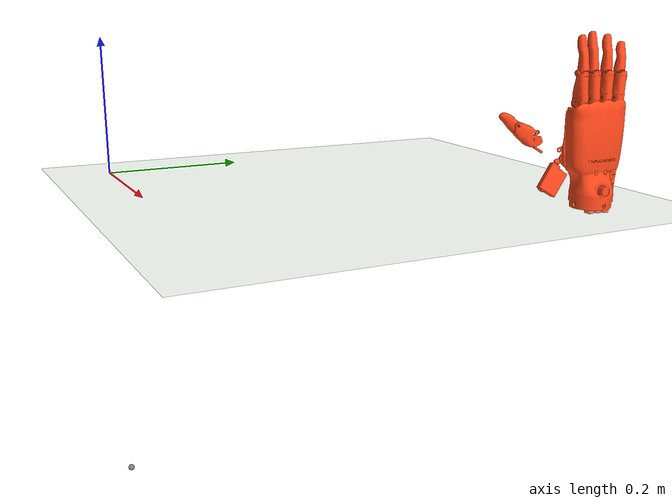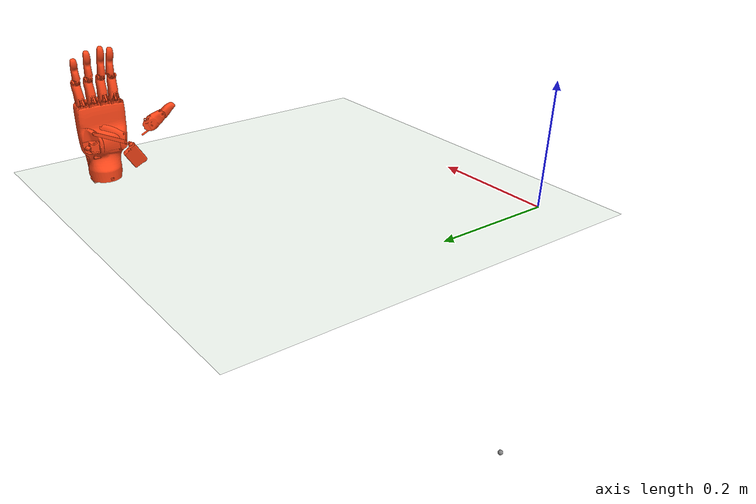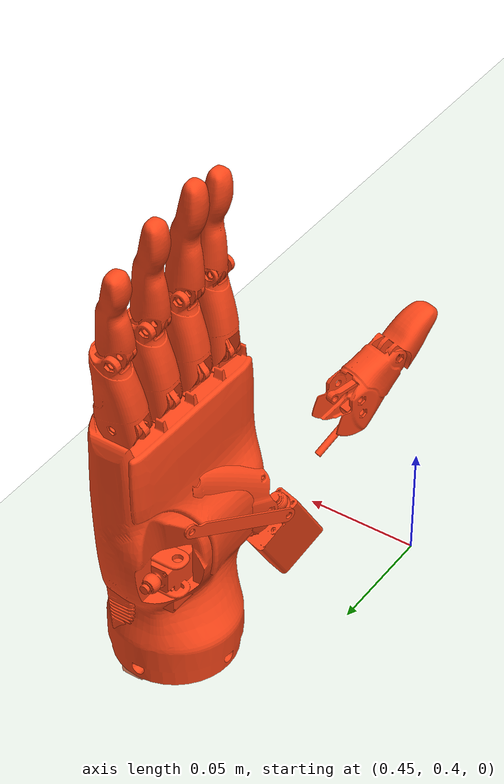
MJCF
<mujoco model="handright9253">
  <default>
    <default class="robot">
      <default class="motor">
        <joint />
        <motor />
      </default>
      <default class="visual">
        <geom material="visualgeom" contype="0" conaffinity="0" group="2" />
      </default>
      <default class="collision">
        <geom material="collision_material" condim="3" contype="0" conaffinity="1" priority="1" group="1" solref="0.005 1" solimp="0.99 0.999 1e-05" friction="1 0.01 0.01" />
      </default>
    </default>
  </default>

  <compiler angle="radian" />

  <asset>
    <material name="material_a" rgba="1 1 1 1" />
    <material name="default_material" rgba="0.7 0.7 0.7 1" />
    <material name="collision_material" rgba="1.0 0.28 0.1 0.9" />
    <mesh name="base_link.STL" file="../meshes/base_link.STL" />
    <mesh name="Link1.STL" file="../meshes/Link1.STL" />
    <mesh name="Link2.STL" file="../meshes/Link2.STL" />
    <mesh name="Link3.STL" file="../meshes/Link3.STL" />
    <mesh name="Link4.STL" file="../meshes/Link4.STL" />
    <mesh name="Link5.STL" file="../meshes/Link5.STL" />
    <mesh name="Link11.STL" file="../meshes/Link11.STL" />
    <mesh name="Link12.STL" file="../meshes/Link12.STL" />
    <mesh name="Link13.STL" file="../meshes/Link13.STL" />
    <mesh name="Link14.STL" file="../meshes/Link14.STL" />
    <mesh name="Link15.STL" file="../meshes/Link15.STL" />
    <mesh name="Link21.STL" file="../meshes/Link21.STL" />
    <mesh name="Link22.STL" file="../meshes/Link22.STL" />
    <mesh name="Link23.STL" file="../meshes/Link23.STL" />
    <mesh name="Link24.STL" file="../meshes/Link24.STL" />
    <mesh name="Link25.STL" file="../meshes/Link25.STL" />
    <mesh name="Link31.STL" file="../meshes/Link31.STL" />
    <mesh name="Link32.STL" file="../meshes/Link32.STL" />
    <mesh name="Link33.STL" file="../meshes/Link33.STL" />
    <mesh name="Link34.STL" file="../meshes/Link34.STL" />
    <mesh name="Link35.STL" file="../meshes/Link35.STL" />
    <mesh name="Link41.STL" file="../meshes/Link41.STL" />
    <mesh name="Link42.STL" file="../meshes/Link42.STL" />
    <mesh name="Link43.STL" file="../meshes/Link43.STL" />
    <mesh name="Link44.STL" file="../meshes/Link44.STL" />
    <mesh name="Link45.STL" file="../meshes/Link45.STL" />
    <mesh name="Link46.STL" file="../meshes/Link46.STL" />
    <mesh name="Link47.STL" file="../meshes/Link47.STL" />
    <mesh name="Link48.STL" file="../meshes/Link48.STL" />
    <mesh name="Link49.STL" file="../meshes/Link49.STL" />
    <mesh name="Link50.STL" file="../meshes/Link50.STL" />
  </asset>

  <worldbody>
    <geom name="floor" type="plane" size="5 5 0.1" pos="0 0 0" rgba="0.8 0.9 0.8 1"/>
    <body name="float_base" pos="0.00000000 0.00000000 -0.50000000" quat="1 0 0 0" childclass="robot">
      <freejoint name="floating_base" />
      <body name="base_link" pos="0.5 0.5 0.5" quat="0.707106790659974 -0.707106771713121 0.0 0.0">
        <inertial pos="-0.0025264 -0.066047 0.0019598" quat="1.0 0.0 0.0 0.0" mass="0.14143" diaginertia="0.00012281 8.3831e-05 7.6663e-05" />
        <geom name="base_link_collision" pos="0 0 0" quat="1.0 0.0 0.0 0.0" type="mesh" mesh="base_link.STL" class="collision" />
        <geom name="base_link_visual" pos="0 0 0" quat="1.0 0.0 0.0 0.0" material="" type="mesh" mesh="base_link.STL" class="visual" />
        <body name="Link1" pos="0.00629 -0.056236 -0.02346" quat="0.9998476915353435 0.017452613885739623 0.0 0.0">
          <joint name="joint01" type="hinge" ref="0.0" class="motor" range="-0.05 0.05" axis="0 0 -1" />
          <inertial pos="-0.0017642 -0.028543 -2.2385E-07" quat="1.0 0.0 0.0 0.0" mass="0.0069755" diaginertia="1.9938e-06 1.4791e-07 2.0272e-06" />
          <geom name="Link1_collision" pos="0 0 0" quat="1.0 0.0 0.0 0.0" type="mesh" mesh="Link1.STL" class="collision" />
          <geom name="Link1_visual" pos="0 0 0" quat="1.0 0.0 0.0 0.0" material="" type="mesh" mesh="Link1.STL" class="visual" />
          <body name="Link2" pos="-0.0010813 -0.050714 0" quat="0.6827239075236659 -0.6786473056865662 0.19859356007191628 0.1840828576428113">
            <joint name="joint12" type="slide" ref="0.0" class="motor" range="0 0.01" axis="0 0 -1" />
            <inertial pos="-1.6261E-10 2.3732E-10 -0.011292" quat="1.0 0.0 0.0 0.0" mass="0.00030666" diaginertia="1.4458e-08 1.4474e-08 6.5358e-10" />
            <geom name="Link2_collision" pos="0 0 0" quat="1.0 0.0 0.0 0.0" type="mesh" mesh="Link2.STL" class="collision" />
            <geom name="Link2_visual" pos="0 0 0" quat="1.0 0.0 0.0 0.0" material="" type="mesh" mesh="Link2.STL" class="visual" />
            <body name="Link3" pos="0.00046892 0.00076819 -0.0244" quat="0.18409668843757346 -0.1986087095713995 -0.6786430701536872 0.6827199814866122">
              <joint name="joint23" type="hinge" ref="0.0" class="motor" range="0 1.7" axis="0 0 -1" />
              <inertial pos="0.0031774 0.017383 0.00090008" quat="1.0 0.0 0.0 0.0" mass="0.0042403" diaginertia="6.6232e-07 2.1146e-07 6.9398e-07" />
              <geom name="Link3_collision" pos="0 0 0" quat="1.0 0.0 0.0 0.0" type="mesh" mesh="Link3.STL" class="collision" />
              <geom name="Link3_visual" pos="0 0 0" quat="1.0 0.0 0.0 0.0" material="" type="mesh" mesh="Link3.STL" class="visual" />
              <body name="Link4" pos="0.0070171 0.037468 -0.00215" quat="1.0 0.0 0.0 0.0">
                <joint name="joint34" type="hinge" ref="0.0" class="motor" range="-1.7 0" axis="0 0 1" />
                <inertial pos="-0.0019697 0.019589 0.00305" quat="1.0 0.0 0.0 0.0" mass="0.0045683" diaginertia="7.6111e-07 9.6076e-08 7.8179e-07" />
                <geom name="Link4_collision" pos="0 0 0" quat="1.0 0.0 0.0 0.0" type="mesh" mesh="Link4.STL" class="collision" />
                <geom name="Link4_visual" pos="0 0 0" quat="1.0 0.0 0.0 0.0" material="" type="mesh" mesh="Link4.STL" class="visual" />
              </body>
            </body>
          </body>
        </body>
        <body name="Link5" pos="-0.00546 -0.13178 -0.030101" quat="-3.6726456431169146e-06 6.410703039183606e-08 -0.017452613885621884 0.9998476915285982">
          <joint name="joint05" type="hinge" ref="0.0" class="motor" range="-2 0" axis="0 0 1" />
          <inertial pos="-0.0038588 0.015743 0.004" quat="1.0 0.0 0.0 0.0" mass="0.00031561" diaginertia="4.8752e-08 3.6866e-09 5.1996e-08" />
          <geom name="Link5_collision" pos="0 0 0" quat="1.0 0.0 0.0 0.0" type="mesh" mesh="Link5.STL" class="collision" />
          <geom name="Link5_visual" pos="0 0 0" quat="1.0 0.0 0.0 0.0" material="" type="mesh" mesh="Link5.STL" class="visual" />
        </body>
        <body name="Link11" pos="0.00629 -0.05655 -0.00695" quat="1.0 0.0 0.0 0.0">
          <joint name="joint011" type="hinge" ref="0.0" class="motor" range="-0.05 0.05" axis="0 0 -1" />
          <inertial pos="-0.0017767 -0.028542 -2.303E-07" quat="1.0 0.0 0.0 0.0" mass="0.0069755" diaginertia="1.9937e-06 1.4796e-07 2.0272e-06" />
          <geom name="Link11_collision" pos="0 0 0" quat="1.0 0.0 0.0 0.0" type="mesh" mesh="Link11.STL" class="collision" />
          <geom name="Link11_visual" pos="0 0 0" quat="1.0 0.0 0.0 0.0" material="" type="mesh" mesh="Link11.STL" class="visual" />
          <body name="Link12" pos="-0.0011031 -0.050343 -0.018279" quat="0.5139601696179364 -0.48563863105052296 0.49670376156253093 0.5032747135782882">
            <joint name="joint1112" type="slide" ref="0.0" class="motor" range="0 0.01" axis="0 0 -1" />
            <inertial pos="-0.018674 6.5223E-06 -0.010992" quat="1.0 0.0 0.0 0.0" mass="0.00030666" diaginertia="1.4466e-08 1.4449e-08 6.7042e-10" />
            <geom name="Link12_collision" pos="0 0 0" quat="1.0 0.0 0.0 0.0" type="mesh" mesh="Link12.STL" class="collision" />
            <geom name="Link12_visual" pos="0 0 0" quat="1.0 0.0 0.0 0.0" material="" type="mesh" mesh="Link12.STL" class="visual" />
            <body name="Link13" pos="-0.018232 0 -0.024124" quat="0.5032728256937752 -0.49670376156253093 -0.48563863105052296 0.5139620182457154">
              <joint name="joint1213" type="hinge" ref="0.0" class="motor" range="0 1.7" axis="0 0 -1" />
              <inertial pos="0.0030737 0.017402 0.00090013" quat="1.0 0.0 0.0 0.0" mass="0.0042403" diaginertia="6.6211e-07 2.1167e-07 6.9397e-07" />
              <geom name="Link13_collision" pos="0 0 0" quat="1.0 0.0 0.0 0.0" type="mesh" mesh="Link13.STL" class="collision" />
              <geom name="Link13_visual" pos="0 0 0" quat="1.0 0.0 0.0 0.0" material="" type="mesh" mesh="Link13.STL" class="visual" />
              <body name="Link14" pos="0.0067937 0.037509 -0.00215" quat="1.0 0.0 0.0 0.0">
                <joint name="joint1314" type="hinge" ref="0.0" class="motor" range="0 1.7" axis="0 0 -1" />
                <inertial pos="-0.001921 0.020796 0.00305" quat="1.0 0.0 0.0 0.0" mass="0.0050396" diaginertia="9.5822e-07 1.0646e-07 9.8384e-07" />
                <geom name="Link14_collision" pos="0 0 0" quat="1.0 0.0 0.0 0.0" type="mesh" mesh="Link14.STL" class="collision" />
                <geom name="Link14_visual" pos="0 0 0" quat="1.0 0.0 0.0 0.0" material="" type="mesh" mesh="Link14.STL" class="visual" />
              </body>
            </body>
          </body>
        </body>
        <body name="Link15" pos="-0.00546 -0.13228 -0.01095" quat="-3.673205103346574e-06 -0.0 0.0 0.9999999999932537">
          <joint name="joint015" type="hinge" ref="0.0" class="motor" range="-2 0" axis="0 0 1" />
          <inertial pos="-0.0039265 0.015726 0.004" quat="1.0 0.0 0.0 0.0" mass="0.00031561" diaginertia="4.8649e-08 3.789e-09 5.1996e-08" />
          <geom name="Link15_collision" pos="0 0 0" quat="1.0 0.0 0.0 0.0" type="mesh" mesh="Link15.STL" class="collision" />
          <geom name="Link15_visual" pos="0 0 0" quat="1.0 0.0 0.0 0.0" material="" type="mesh" mesh="Link15.STL" class="visual" />
        </body>
        <body name="Link21" pos="0.00629 -0.056157 0.0080633" quat="0.9996573233730004 -0.026177009506979564 0.0 0.0">
          <joint name="joint021" type="hinge" ref="0.0" class="motor" range="-0.05 0.05" axis="0 0 1" />
          <inertial pos="-0.0017767 -0.028542 -2.2887E-07" quat="1.0 0.0 0.0 0.0" mass="0.0069755" diaginertia="1.9937e-06 1.4796e-07 2.0272e-06" />
          <geom name="Link21_collision" pos="0 0 0" quat="1.0 0.0 0.0 0.0" type="mesh" mesh="Link21.STL" class="collision" />
          <geom name="Link21_visual" pos="0 0 0" quat="1.0 0.0 0.0 0.0" material="" type="mesh" mesh="Link21.STL" class="visual" />
          <body name="Link22" pos="-0.0011031 -0.050688 0" quat="0.5051481262037367 -0.49424420832909 0.5056902852009985 0.49479831101099914">
            <joint name="joint2122" type="slide" ref="0.0" class="motor" range="0 0.01" axis="0 0 -1" />
            <inertial pos="7.7552E-11 1.8671E-10 -0.011292" quat="1.0 0.0 0.0 0.0" mass="0.00030666" diaginertia="1.4483e-08 1.4449e-08 6.5358e-10" />
            <geom name="Link22_collision" pos="0 0 0" quat="1.0 0.0 0.0 0.0" type="mesh" mesh="Link22.STL" class="collision" />
            <geom name="Link22_visual" pos="0 0 0" quat="1.0 0.0 0.0 0.0" material="" type="mesh" mesh="Link22.STL" class="visual" />
            <body name="Link23" pos="0.0009 0 -0.0244" quat="0.4948070635347001 -0.5056817214570638 -0.49425482572460105 0.5051377373631194">
              <joint name="joint2223" type="hinge" ref="0.0" class="motor" range="0 1.7" axis="0 0 -1" />
              <inertial pos="0.0030737 0.017402 0.00090015" quat="1.0 0.0 0.0 0.0" mass="0.0042403" diaginertia="6.6211e-07 2.1167e-07 6.9397e-07" />
              <geom name="Link23_collision" pos="0 0 0" quat="1.0 0.0 0.0 0.0" type="mesh" mesh="Link23.STL" class="collision" />
              <geom name="Link23_visual" pos="0 0 0" quat="1.0 0.0 0.0 0.0" material="" type="mesh" mesh="Link23.STL" class="visual" />
              <body name="Link24" pos="0.0067937 0.037509 -0.00215" quat="1.0 0.0 0.0 0.0">
                <joint name="joint2324" type="hinge" ref="0.0" class="motor" range="-1.7 0" axis="0 0 1" />
                <inertial pos="-0.0021753 0.019567 0.00305" quat="1.0 0.0 0.0 0.0" mass="0.0045683" diaginertia="7.6286e-07 9.431e-08 7.8177e-07" />
                <geom name="Link24_collision" pos="0 0 0" quat="1.0 0.0 0.0 0.0" type="mesh" mesh="Link24.STL" class="collision" />
                <geom name="Link24_visual" pos="0 0 0" quat="1.0 0.0 0.0 0.0" material="" type="mesh" mesh="Link24.STL" class="visual" />
              </body>
            </body>
          </body>
        </body>
        <body name="Link25" pos="-0.00546 -0.13199 0.0080321" quat="-3.6719463818114812e-06 -9.615352491138912e-08 -0.026177009506802965 -0.9996573233662565">
          <joint name="joint025" type="hinge" ref="0.0" class="motor" range="-2 0" axis="0 0 1" />
          <inertial pos="-0.0039265 0.015726 0.004" quat="1.0 0.0 0.0 0.0" mass="0.00031561" diaginertia="4.8649e-08 3.789e-09 5.1996e-08" />
          <geom name="Link25_collision" pos="0 0 0" quat="1.0 0.0 0.0 0.0" type="mesh" mesh="Link25.STL" class="collision" />
          <geom name="Link25_visual" pos="0 0 0" quat="1.0 0.0 0.0 0.0" material="" type="mesh" mesh="Link25.STL" class="visual" />
        </body>
        <body name="Link31" pos="0.00629 -0.054979 0.023035" quat="0.998629528346543 -0.05233607851531355 0.0 0.0">
          <joint name="joint031" type="hinge" ref="0.0" class="motor" range="-0.05 0.05" axis="0 0 1" />
          <inertial pos="-0.0017767 -0.028542 -2.2872E-07" quat="1.0 0.0 0.0 0.0" mass="0.0069755" diaginertia="1.9937e-06 1.4796e-07 2.0272e-06" />
          <geom name="Link31_collision" pos="0 0 0" quat="1.0 0.0 0.0 0.0" type="mesh" mesh="Link31.STL" class="collision" />
          <geom name="Link31_visual" pos="0 0 0" quat="1.0 0.0 0.0 0.0" material="" type="mesh" mesh="Link31.STL" class="visual" />
          <body name="Link32" pos="-0.0011031 -0.050688 0" quat="0.5048511551937825 -0.49394070630271875 0.5059867417972601 0.49510130971556443">
            <joint name="joint3132" type="slide" ref="0.0" class="motor" range="0 0.01" axis="0 0 -1" />
            <inertial pos="2.6333E-10 5.3616E-10 -0.011292" quat="1.0 0.0 0.0 0.0" mass="0.00030666" diaginertia="1.4483e-08 1.4449e-08 6.5358e-10" />
            <geom name="Link32_collision" pos="0 0 0" quat="1.0 0.0 0.0 0.0" type="mesh" mesh="Link32.STL" class="collision" />
            <geom name="Link32_visual" pos="0 0 0" quat="1.0 0.0 0.0 0.0" material="" type="mesh" mesh="Link32.STL" class="visual" />
            <body name="Link33" pos="0.0009 0 -0.0244" quat="0.49511005709366424 -0.5059781833119983 -0.4939513277440654 0.5048407622180217">
              <joint name="joint3233" type="hinge" ref="0.0" class="motor" range="-1.7 0" axis="0 0 1" />
              <inertial pos="0.0030737 0.017402 0.00090014" quat="1.0 0.0 0.0 0.0" mass="0.0042403" diaginertia="6.6211e-07 2.1167e-07 6.9398e-07" />
              <geom name="Link33_collision" pos="0 0 0" quat="1.0 0.0 0.0 0.0" type="mesh" mesh="Link33.STL" class="collision" />
              <geom name="Link33_visual" pos="0 0 0" quat="1.0 0.0 0.0 0.0" material="" type="mesh" mesh="Link33.STL" class="visual" />
              <body name="Link34" pos="0.0067937 0.037509 -0.00215" quat="1.0 0.0 0.0 0.0">
                <joint name="joint3334" type="hinge" ref="0.0" class="motor" range="0 1.7" axis="0 0 -1" />
                <inertial pos="-0.0024748 0.016203 0.0030531" quat="1.0 0.0 0.0 0.0" mass="0.0035996" diaginertia="4.3913e-07 7.0247e-08 4.4867e-07" />
                <geom name="Link34_collision" pos="0 0 0" quat="1.0 0.0 0.0 0.0" type="mesh" mesh="Link34.STL" class="collision" />
                <geom name="Link34_visual" pos="0 0 0" quat="1.0 0.0 0.0 0.0" material="" type="mesh" mesh="Link34.STL" class="visual" />
              </body>
            </body>
          </body>
        </body>
        <body name="Link35" pos="-0.00546 -0.13071 0.026973" quat="-3.6681710798751037e-06 -1.922411506915967e-07 -0.05233607851496048 -0.9986295283398059">
          <joint name="joint035" type="hinge" ref="0.0" class="motor" range="-2 0" axis="0 0 1" />
          <inertial pos="-0.0039265 0.015726 0.004" quat="1.0 0.0 0.0 0.0" mass="0.00031561" diaginertia="4.8649e-08 3.789e-09 5.1996e-08" />
          <geom name="Link35_collision" pos="0 0 0" quat="1.0 0.0 0.0 0.0" type="mesh" mesh="Link35.STL" class="collision" />
          <geom name="Link35_visual" pos="0 0 0" quat="1.0 0.0 0.0 0.0" material="" type="mesh" mesh="Link35.STL" class="visual" />
        </body>
        <body name="Link41" pos="-0.01096 -0.06025 0.02985" quat="-0.003167036833808464 -0.0031618305657379942 0.7071010107166166 -0.7070983901471604">
          <joint name="joint041" type="hinge" ref="0.0" class="motor" range="-0.02 0.02" axis="0 0 -1" />
          <inertial pos="3.252E-10 0.022007 0.0065979" quat="1.0 0.0 0.0 0.0" mass="0.0092961" diaginertia="1.5208e-06 5.558e-07 1.1427e-06" />
          <geom name="Link41_collision" pos="0 0 0" quat="1.0 0.0 0.0 0.0" type="mesh" mesh="Link41.STL" class="collision" />
          <geom name="Link41_visual" pos="0 0 0" quat="1.0 0.0 0.0 0.0" material="" type="mesh" mesh="Link41.STL" class="visual" />
          <body name="Link42" pos="0 0.027687 0" quat="0.7071054825112363 0.7071080798594735 0.0 0.0">
            <joint name="joint4142" type="slide" ref="0.0" class="motor" range="0 0.01" axis="0 0 -1" />
            <inertial pos="5.0532E-09 -1.4449E-09 -0.011425" quat="1.0 0.0 0.0 0.0" mass="0.00016153" diaginertia="7.1494e-09 7.177e-09 2.337e-10" />
            <geom name="Link42_collision" pos="0 0 0" quat="1.0 0.0 0.0 0.0" type="mesh" mesh="Link42.STL" class="collision" />
            <geom name="Link42_visual" pos="0 0 0" quat="1.0 0.0 0.0 0.0" material="" type="mesh" mesh="Link42.STL" class="visual" />
            <body name="Link43" pos="0 -0.0026 -0.01955" quat="0.5022430933308293 -0.5022449381761112 -0.4977449533635958 -0.4977467816862566">
              <joint name="joint4243" type="hinge" ref="0.0" class="motor" range="0 1.2" axis="0 0 -1" />
              <inertial pos="-0.0078715 0.0065154 0.00388" quat="1.0 0.0 0.0 0.0" mass="0.0018869" diaginertia="5.816e-08 7.9161e-08 6.7433e-08" />
              <geom name="Link43_collision" pos="0 0 0" quat="1.0 0.0 0.0 0.0" type="mesh" mesh="Link43.STL" class="collision" />
              <geom name="Link43_visual" pos="0 0 0" quat="1.0 0.0 0.0 0.0" material="" type="mesh" mesh="Link43.STL" class="visual" />
              <body name="Link44" pos="-0.012782 0.013348 0.0022" quat="0.09968429730547897 0.09968466346702105 0.7000462873782122 0.7000437159693395">
                <joint name="joint4344" type="hinge" ref="0.0" class="motor" range="-0.5 0" axis="0 0 -1" />
                <inertial pos="0.021932 0.012785 -0.0047886" quat="1.0 0.0 0.0 0.0" mass="0.0066075" diaginertia="1.5687e-06 1.7353e-06 2.786e-06" />
                <geom name="Link44_collision" pos="0 0 0" quat="1.0 0.0 0.0 0.0" type="mesh" mesh="Link44.STL" class="collision" />
                <geom name="Link44_visual" pos="0 0 0" quat="1.0 0.0 0.0 0.0" material="" type="mesh" mesh="Link44.STL" class="visual" />
                <body name="Link45" pos="0.0083049 -0.0034513 -0.00475" quat="0.07445459910383252 -0.9569662115418335 -0.2796405268460717 0.0217568008863797">
                  <joint name="joint4445" type="hinge" ref="0.0" class="motor" range="0 0.4" axis="0 -0.15464 -0.98797" />
                  <inertial pos="0.02194 -0.0065438 0.0010242" quat="1.0 0.0 0.0 0.0" mass="0.0092256" diaginertia="5.5097e-07 1.1405e-06 1.4973e-06" />
                  <geom name="Link45_collision" pos="0 0 0" quat="1.0 0.0 0.0 0.0" type="mesh" mesh="Link45.STL" class="collision" />
                  <geom name="Link45_visual" pos="0 0 0" quat="1.0 0.0 0.0 0.0" material="" type="mesh" mesh="Link45.STL" class="visual" />
                  <body name="Link46" pos="0.02428 0 0" quat="0.05484779690205832 0.704976194706182 -0.05485297594637062 -0.7049761947061819">
                    <joint name="joint4546" type="slide" ref="0.0" class="motor" range="0 0.01" axis="0 0 -1" />
                    <inertial pos="-5.7515E-13 -6.7503E-13 -0.01215" quat="1.0 0.0 0.0 0.0" mass="0.00017549" diaginertia="8.3803e-09 8.3341e-09 2.4208e-10" />
                    <geom name="Link46_collision" pos="0 0 0" quat="1.0 0.0 0.0 0.0" type="mesh" mesh="Link46.STL" class="collision" />
                    <geom name="Link46_visual" pos="0 0 0" quat="1.0 0.0 0.0 0.0" material="" type="mesh" mesh="Link46.STL" class="visual" />
                    <body name="Link47" pos="0.001 0 -0.0223" quat="0.6787218975567739 -0.19833203689450224 -0.678723354585274 0.1983320368945023">
                      <joint name="joint4647" type="hinge" ref="0.0" class="motor" range="0 0.8" axis="0 0 -1" />
                      <inertial pos="-0.0060688 0.011295 0.00099972" quat="1.0 0.0 0.0 0.0" mass="0.0037847" diaginertia="3.6981e-07 3.2394e-07 4.6531e-07" />
                      <geom name="Link47_collision" pos="0 0 0" quat="1.0 0.0 0.0 0.0" type="mesh" mesh="Link47.STL" class="collision" />
                      <geom name="Link47_visual" pos="0 0 0" quat="1.0 0.0 0.0 0.0" material="" type="mesh" mesh="Link47.STL" class="visual" />
                      <body name="Link48" pos="-0.016763 0.023079 -0.00255" quat="1.0 0.0 0.0 0.0">
                        <joint name="joint4748" type="hinge" ref="0.0" class="motor" range="0 1.2" axis="0 0 -1" />
                        <inertial pos="-0.0092888 0.0049529 0.0035533" quat="1.0 0.0 0.0 0.0" mass="0.0033441" diaginertia="1.3632e-07 1.4052e-07 2.0026e-07" />
                        <geom name="Link48_collision" pos="0 0 0" quat="1.0 0.0 0.0 0.0" type="mesh" mesh="Link48.STL" class="collision" />
                        <geom name="Link48_visual" pos="0 0 0" quat="1.0 0.0 0.0 0.0" material="" type="mesh" mesh="Link48.STL" class="visual" />
                      </body>
                    </body>
                  </body>
                </body>
                <body name="Link49" pos="0.036109 0.035336 -0.0033" quat="1.3492435731251315e-11 -3.6732051033217936e-06 -0.9999999999865075 3.6732051033217936e-06">
                  <joint name="joint4449" type="hinge" ref="0.0" class="motor" range="0 1" axis="0 0 -1" />
                  <inertial pos="-0.017737 0.0022319 0.00145" quat="1.0 0.0 0.0 0.0" mass="0.00021109" diaginertia="7.9738e-10 2.5464e-08 2.5965e-08" />
                  <geom name="Link49_collision" pos="0 0 0" quat="1.0 0.0 0.0 0.0" type="mesh" mesh="Link49.STL" class="collision" />
                  <geom name="Link49_visual" pos="0 0 0" quat="1.0 0.0 0.0 0.0" material="" type="mesh" mesh="Link49.STL" class="visual" />
                </body>
              </body>
              <body name="Link50" pos="-0.010085 0.014283 0.010893" quat="0.09968429730547897 0.09968466346702105 0.7000462873782122 0.7000437159693395">
                <joint name="joint4350" type="hinge" ref="0.0" class="motor" range="-1 0" axis="0 0 -1" />
                <inertial pos="0.023451 0.0093386 -0.0005" quat="1.0 0.0 0.0 0.0" mass="0.00031643" diaginertia="1.1104e-08 6.5483e-08 7.6534e-08" />
                <geom name="Link50_collision" pos="0 0 0" quat="1.0 0.0 0.0 0.0" type="mesh" mesh="Link50.STL" class="collision" />
                <geom name="Link50_visual" pos="0 0 0" quat="1.0 0.0 0.0 0.0" material="" type="mesh" mesh="Link50.STL" class="visual" />
              </body>
            </body>
          </body>
        </body>
      </body>
      <site name="world_site" pos="0 0 0" quat="1 0 0 0" />
      <camera name="front_camera" mode="track" fovy="90.0" quat="4.329780281177467e-17 4.329780281177466e-17 0.7071067811865475 0.7071067811865476" pos="0.0 2.0 0.5" />
      <camera name="side_camera" mode="track" fovy="90.0" quat="-0.5 -0.4999999999999999 0.5 0.5000000000000001" pos="-2.0 0.0 0.5" />
    </body>
  </worldbody>

  <actuator>
    <motor name="joint01_ctrl" joint="joint01" class="motor" />
    <motor name="joint12_ctrl" joint="joint12" class="motor" />
    <motor name="joint23_ctrl" joint="joint23" class="motor" />
    <motor name="joint34_ctrl" joint="joint34" class="motor" />
    <motor name="joint05_ctrl" joint="joint05" class="motor" />
    <motor name="joint011_ctrl" joint="joint011" class="motor" />
    <motor name="joint1112_ctrl" joint="joint1112" class="motor" />
    <motor name="joint1213_ctrl" joint="joint1213" class="motor" />
    <motor name="joint1314_ctrl" joint="joint1314" class="motor" />
    <motor name="joint015_ctrl" joint="joint015" class="motor" />
    <motor name="joint021_ctrl" joint="joint021" class="motor" />
    <motor name="joint2122_ctrl" joint="joint2122" class="motor" />
    <motor name="joint2223_ctrl" joint="joint2223" class="motor" />
    <motor name="joint2324_ctrl" joint="joint2324" class="motor" />
    <motor name="joint025_ctrl" joint="joint025" class="motor" />
    <motor name="joint031_ctrl" joint="joint031" class="motor" />
    <motor name="joint3132_ctrl" joint="joint3132" class="motor" />
    <motor name="joint3233_ctrl" joint="joint3233" class="motor" />
    <motor name="joint3334_ctrl" joint="joint3334" class="motor" />
    <motor name="joint035_ctrl" joint="joint035" class="motor" />
    <motor name="joint041_ctrl" joint="joint041" class="motor" />
    <motor name="joint4142_ctrl" joint="joint4142" class="motor" />
    <motor name="joint4243_ctrl" joint="joint4243" class="motor" />
    <motor name="joint4344_ctrl" joint="joint4344" class="motor" />
    <motor name="joint4445_ctrl" joint="joint4445" class="motor" />
    <motor name="joint4546_ctrl" joint="joint4546" class="motor" />
    <motor name="joint4647_ctrl" joint="joint4647" class="motor" />
    <motor name="joint4748_ctrl" joint="joint4748" class="motor" />
    <motor name="joint4449_ctrl" joint="joint4449" class="motor" />
    <motor name="joint4350_ctrl" joint="joint4350" class="motor" />
  </actuator>

  <contact>
    <exclude body1="base_link" body2="Link1" />
    <exclude body1="Link1" body2="Link2" />
    <exclude body1="Link2" body2="Link3" />
    <exclude body1="Link3" body2="Link4" />
    <exclude body1="base_link" body2="Link5" />
    <exclude body1="base_link" body2="Link11" />
    <exclude body1="Link11" body2="Link12" />
    <exclude body1="Link12" body2="Link13" />
    <exclude body1="Link13" body2="Link14" />
    <exclude body1="base_link" body2="Link15" />
    <exclude body1="base_link" body2="Link21" />
    <exclude body1="Link21" body2="Link22" />
    <exclude body1="Link22" body2="Link23" />
    <exclude body1="Link23" body2="Link24" />
    <exclude body1="base_link" body2="Link25" />
    <exclude body1="base_link" body2="Link31" />
    <exclude body1="Link31" body2="Link32" />
    <exclude body1="Link32" body2="Link33" />
    <exclude body1="Link33" body2="Link34" />
    <exclude body1="base_link" body2="Link35" />
    <exclude body1="base_link" body2="Link41" />
    <exclude body1="Link41" body2="Link42" />
    <exclude body1="Link42" body2="Link43" />
    <exclude body1="Link43" body2="Link44" />
    <exclude body1="Link44" body2="Link45" />
    <exclude body1="Link45" body2="Link46" />
    <exclude body1="Link46" body2="Link47" />
    <exclude body1="Link47" body2="Link48" />
    <exclude body1="Link44" body2="Link49" />
    <exclude body1="Link43" body2="Link50" />
  </contact>

  <sensor>
    <framepos name="world_site_pos" objtype="site" objname="world_site" />
    <framequat name="world_site_quat" objtype="site" objname="world_site" />
    <framelinvel name="world_site_linvel" objtype="site" objname="world_site" />
    <frameangvel name="world_site_angvel" objtype="site" objname="world_site" />
    <velocimeter name="world_site_vel" site="world_site" />
  </sensor>
</mujoco>
